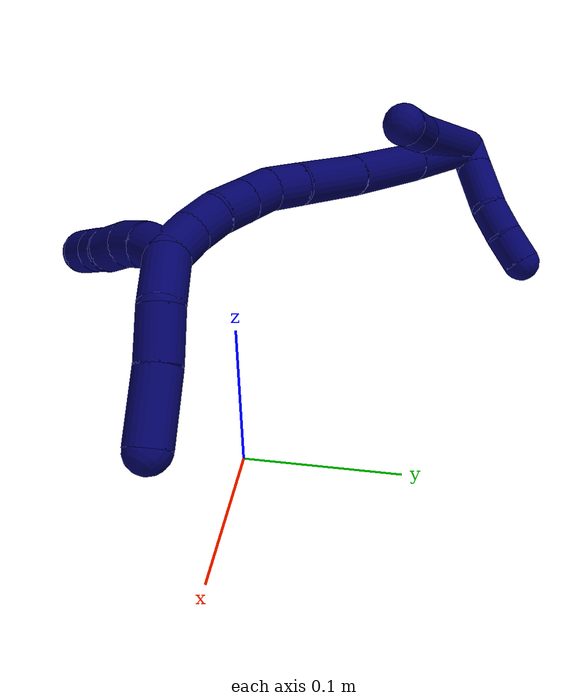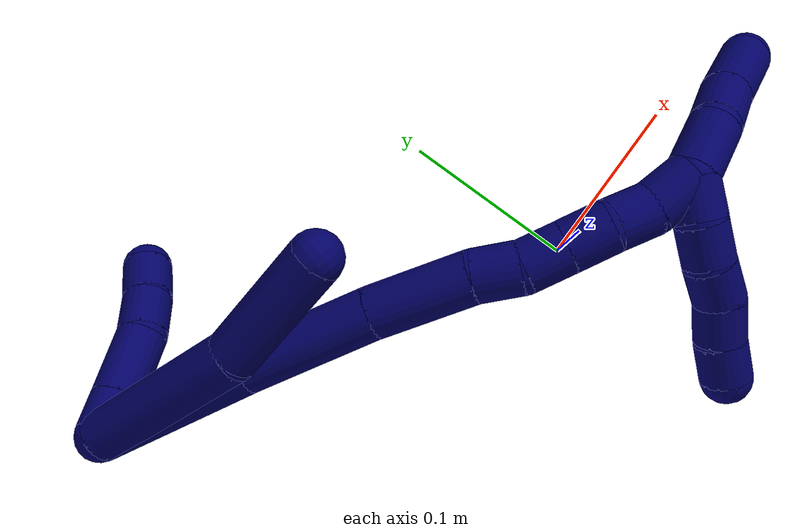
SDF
<sdf version="1.7">
 <world name="default">
  <model name="7">
   <static>0</static>
   <link name="7">
    <collision name="collision-cylinder-e_1_2_8">
     <pose>0.027327 0.006563 -0.033048 -2.94556 0.681447 -2.6005</pose>
     <geometry><cylinder><radius>0.0125</radius><length>0.086765</length></cylinder></geometry>
     <surface>
      <friction><ode><mu>1.16</mu><mu2>1.16</mu2><slip1>0</slip1><slip2>0</slip2></ode></friction>
      <contact><ode><kp>1e+06</kp><kd>1</kd><max_vel>0</max_vel><min_depth>0.001</min_depth></ode></contact>
     </surface>
    </collision>
    <visual name="visual-cylinder-e_1_2_8">
     <pose>0.027327 0.006563 -0.033048 -2.94556 0.681447 -2.6005</pose>
     <geometry><cylinder><radius>0.0125</radius><length>0.086765</length></cylinder></geometry>
     <material><ambient>0.003922 0 0.403922 1</ambient></material>
    </visual>
    <collision name="collision-cylinder-e_2_8_6">
     <pose>0.070886 0.025255 -0.090368 -2.67817 0.539087 -1.72789</pose>
     <geometry><cylinder><radius>0.0125</radius><length>0.063235</length></cylinder></geometry>
     <surface>
      <friction><ode><mu>1.16</mu><mu2>1.16</mu2><slip1>0</slip1><slip2>0</slip2></ode></friction>
      <contact><ode><kp>1e+06</kp><kd>1</kd><max_vel>0</max_vel><min_depth>0.001</min_depth></ode></contact>
     </surface>
    </collision>
    <visual name="visual-cylinder-e_2_8_6">
     <pose>0.070886 0.025255 -0.090368 -2.67817 0.539087 -1.72789</pose>
     <geometry><cylinder><radius>0.0125</radius><length>0.063235</length></cylinder></geometry>
     <material><ambient>0.003922 0 0.403922 1</ambient></material>
    </visual>
    <collision name="collision-cylinder-e_1_2_9">
     <pose>-0.005122 0.003405 -0.007931 -2.73604 -0.53554 1.85537</pose>
     <geometry><cylinder><radius>0.0125</radius><length>0.020073</length></cylinder></geometry>
     <surface>
      <friction><ode><mu>1.16</mu><mu2>1.16</mu2><slip1>0</slip1><slip2>0</slip2></ode></friction>
      <contact><ode><kp>1e+06</kp><kd>1</kd><max_vel>0</max_vel><min_depth>0.001</min_depth></ode></contact>
     </surface>
    </collision>
    <visual name="visual-cylinder-e_1_2_9">
     <pose>-0.005122 0.003405 -0.007931 -2.73604 -0.53554 1.85537</pose>
     <geometry><cylinder><radius>0.0125</radius><length>0.020073</length></cylinder></geometry>
     <material><ambient>0.003922 0 0.403922 1</ambient></material>
    </visual>
    <collision name="collision-cylinder-e_2_9_10">
     <pose>-0.018876 0.012993 -0.029709 -2.72165 -0.517509 1.78586</pose>
     <geometry><cylinder><radius>0.0125</radius><length>0.034899</length></cylinder></geometry>
     <surface>
      <friction><ode><mu>1.16</mu><mu2>1.16</mu2><slip1>0</slip1><slip2>0</slip2></ode></friction>
      <contact><ode><kp>1e+06</kp><kd>1</kd><max_vel>0</max_vel><min_depth>0.001</min_depth></ode></contact>
     </surface>
    </collision>
    <visual name="visual-cylinder-e_2_9_10">
     <pose>-0.018876 0.012993 -0.029709 -2.72165 -0.517509 1.78586</pose>
     <geometry><cylinder><radius>0.0125</radius><length>0.034899</length></cylinder></geometry>
     <material><ambient>0.003922 0 0.403922 1</ambient></material>
    </visual>
    <collision name="collision-cylinder-e_3_10_11">
     <pose>-0.035516 0.023411 -0.050234 -2.57636 -0.791677 1.92702</pose>
     <geometry><cylinder><radius>0.0125</radius><length>0.022508</length></cylinder></geometry>
     <surface>
      <friction><ode><mu>1.16</mu><mu2>1.16</mu2><slip1>0</slip1><slip2>0</slip2></ode></friction>
      <contact><ode><kp>1e+06</kp><kd>1</kd><max_vel>0</max_vel><min_depth>0.001</min_depth></ode></contact>
     </surface>
    </collision>
    <visual name="visual-cylinder-e_3_10_11">
     <pose>-0.035516 0.023411 -0.050234 -2.57636 -0.791677 1.92702</pose>
     <geometry><cylinder><radius>0.0125</radius><length>0.022508</length></cylinder></geometry>
     <material><ambient>0.003922 0 0.403922 1</ambient></material>
    </visual>
    <collision name="collision-cylinder-e_4_11_5">
     <pose>-0.052511 0.031893 -0.062202 -2.46523 -0.924263 1.91203</pose>
     <geometry><cylinder><radius>0.0125</radius><length>0.02252</length></cylinder></geometry>
     <surface>
      <friction><ode><mu>1.16</mu><mu2>1.16</mu2><slip1>0</slip1><slip2>0</slip2></ode></friction>
      <contact><ode><kp>1e+06</kp><kd>1</kd><max_vel>0</max_vel><min_depth>0.001</min_depth></ode></contact>
     </surface>
    </collision>
    <visual name="visual-cylinder-e_4_11_5">
     <pose>-0.052511 0.031893 -0.062202 -2.46523 -0.924263 1.91203</pose>
     <geometry><cylinder><radius>0.0125</radius><length>0.02252</length></cylinder></geometry>
     <material><ambient>0.003922 0 0.403922 1</ambient></material>
    </visual>
    <collision name="collision-cylinder-e_1_2_12">
     <pose>0.018346 -0.001208 -0.034586 3.10669 0.487464 3.00144</pose>
     <geometry><cylinder><radius>0.0125</radius><length>0.078339</length></cylinder></geometry>
     <surface>
      <friction><ode><mu>1.16</mu><mu2>1.16</mu2><slip1>0</slip1><slip2>0</slip2></ode></friction>
      <contact><ode><kp>1e+06</kp><kd>1</kd><max_vel>0</max_vel><min_depth>0.001</min_depth></ode></contact>
     </surface>
    </collision>
    <visual name="visual-cylinder-e_1_2_12">
     <pose>0.018346 -0.001208 -0.034586 3.10669 0.487464 3.00144</pose>
     <geometry><cylinder><radius>0.0125</radius><length>0.078339</length></cylinder></geometry>
     <material><ambient>0.003922 0 0.403922 1</ambient></material>
    </visual>
    <collision name="collision-cylinder-e_2_12_13">
     <pose>0.052844 -0.004117 -0.097596 3.0818 0.515974 2.91589</pose>
     <geometry><cylinder><radius>0.0125</radius><length>0.065473</length></cylinder></geometry>
     <surface>
      <friction><ode><mu>1.16</mu><mu2>1.16</mu2><slip1>0</slip1><slip2>0</slip2></ode></friction>
      <contact><ode><kp>1e+06</kp><kd>1</kd><max_vel>0</max_vel><min_depth>0.001</min_depth></ode></contact>
     </surface>
    </collision>
    <visual name="visual-cylinder-e_2_12_13">
     <pose>0.052844 -0.004117 -0.097596 3.0818 0.515974 2.91589</pose>
     <geometry><cylinder><radius>0.0125</radius><length>0.065473</length></cylinder></geometry>
     <material><ambient>0.003922 0 0.403922 1</ambient></material>
    </visual>
    <collision name="collision-cylinder-e_3_13_14">
     <pose>0.081785 -0.008281 -0.146566 3.02233 0.553569 2.72728</pose>
     <geometry><cylinder><radius>0.0125</radius><length>0.048654</length></cylinder></geometry>
     <surface>
      <friction><ode><mu>1.16</mu><mu2>1.16</mu2><slip1>0</slip1><slip2>0</slip2></ode></friction>
      <contact><ode><kp>1e+06</kp><kd>1</kd><max_vel>0</max_vel><min_depth>0.001</min_depth></ode></contact>
     </surface>
    </collision>
    <visual name="visual-cylinder-e_3_13_14">
     <pose>0.081785 -0.008281 -0.146566 3.02233 0.553569 2.72728</pose>
     <geometry><cylinder><radius>0.0125</radius><length>0.048654</length></cylinder></geometry>
     <material><ambient>0.003922 0 0.403922 1</ambient></material>
    </visual>
    <collision name="collision-cylinder-e_4_14_15">
     <pose>0.100264 -0.013755 -0.176051 2.81661 0.542759 2.07674</pose>
     <geometry><cylinder><radius>0.0125</radius><length>0.02203</length></cylinder></geometry>
     <surface>
      <friction><ode><mu>1.16</mu><mu2>1.16</mu2><slip1>0</slip1><slip2>0</slip2></ode></friction>
      <contact><ode><kp>1e+06</kp><kd>1</kd><max_vel>0</max_vel><min_depth>0.001</min_depth></ode></contact>
     </surface>
    </collision>
    <visual name="visual-cylinder-e_4_14_15">
     <pose>0.100264 -0.013755 -0.176051 2.81661 0.542759 2.07674</pose>
     <geometry><cylinder><radius>0.0125</radius><length>0.02203</length></cylinder></geometry>
     <material><ambient>0.003922 0 0.403922 1</ambient></material>
    </visual>
    <collision name="collision-cylinder-e_5_15_16">
     <pose>0.109561 -0.017698 -0.19466 3.04552 0.355622 2.61884</pose>
     <geometry><cylinder><radius>0.0125</radius><length>0.020728</length></cylinder></geometry>
     <surface>
      <friction><ode><mu>1.16</mu><mu2>1.16</mu2><slip1>0</slip1><slip2>0</slip2></ode></friction>
      <contact><ode><kp>1e+06</kp><kd>1</kd><max_vel>0</max_vel><min_depth>0.001</min_depth></ode></contact>
     </surface>
    </collision>
    <visual name="visual-cylinder-e_5_15_16">
     <pose>0.109561 -0.017698 -0.19466 3.04552 0.355622 2.61884</pose>
     <geometry><cylinder><radius>0.0125</radius><length>0.020728</length></cylinder></geometry>
     <material><ambient>0.003922 0 0.403922 1</ambient></material>
    </visual>
    <collision name="collision-cylinder-e_6_16_17">
     <pose>0.117049 -0.019505 -0.214444 3.05528 0.365006 2.68188</pose>
     <geometry><cylinder><radius>0.0125</radius><length>0.021734</length></cylinder></geometry>
     <surface>
      <friction><ode><mu>1.16</mu><mu2>1.16</mu2><slip1>0</slip1><slip2>0</slip2></ode></friction>
      <contact><ode><kp>1e+06</kp><kd>1</kd><max_vel>0</max_vel><min_depth>0.001</min_depth></ode></contact>
     </surface>
    </collision>
    <visual name="visual-cylinder-e_6_16_17">
     <pose>0.117049 -0.019505 -0.214444 3.05528 0.365006 2.68188</pose>
     <geometry><cylinder><radius>0.0125</radius><length>0.021734</length></cylinder></geometry>
     <material><ambient>0.003922 0 0.403922 1</ambient></material>
    </visual>
    <collision name="collision-cylinder-e_7_17_18">
     <pose>0.122554 -0.02248 -0.234213 2.92746 0.163072 1.30016</pose>
     <geometry><cylinder><radius>0.0125</radius><length>0.020028</length></cylinder></geometry>
     <surface>
      <friction><ode><mu>1.16</mu><mu2>1.16</mu2><slip1>0</slip1><slip2>0</slip2></ode></friction>
      <contact><ode><kp>1e+06</kp><kd>1</kd><max_vel>0</max_vel><min_depth>0.001</min_depth></ode></contact>
     </surface>
    </collision>
    <visual name="visual-cylinder-e_7_17_18">
     <pose>0.122554 -0.02248 -0.234213 2.92746 0.163072 1.30016</pose>
     <geometry><cylinder><radius>0.0125</radius><length>0.020028</length></cylinder></geometry>
     <material><ambient>0.003922 0 0.403922 1</ambient></material>
    </visual>
    <collision name="collision-cylinder-e_8_18_1">
     <pose>0.125948 -0.023712 -0.255206 -3.06525 0.154259 -2.22367</pose>
     <geometry><cylinder><radius>0.0125</radius><length>0.023015</length></cylinder></geometry>
     <surface>
      <friction><ode><mu>1.16</mu><mu2>1.16</mu2><slip1>0</slip1><slip2>0</slip2></ode></friction>
      <contact><ode><kp>1e+06</kp><kd>1</kd><max_vel>0</max_vel><min_depth>0.001</min_depth></ode></contact>
     </surface>
    </collision>
    <visual name="visual-cylinder-e_8_18_1">
     <pose>0.125948 -0.023712 -0.255206 -3.06525 0.154259 -2.22367</pose>
     <geometry><cylinder><radius>0.0125</radius><length>0.023015</length></cylinder></geometry>
     <material><ambient>0.003922 0 0.403922 1</ambient></material>
    </visual>
    <collision name="collision-cylinder-e_1_1_19">
     <pose>0.122437 -0.019502 -0.280563 -2.9075 -0.35105 1.97065</pose>
     <geometry><cylinder><radius>0.0125</radius><length>0.030698</length></cylinder></geometry>
     <surface>
      <friction><ode><mu>1.16</mu><mu2>1.16</mu2><slip1>0</slip1><slip2>0</slip2></ode></friction>
      <contact><ode><kp>1e+06</kp><kd>1</kd><max_vel>0</max_vel><min_depth>0.001</min_depth></ode></contact>
     </surface>
    </collision>
    <visual name="visual-cylinder-e_1_1_19">
     <pose>0.122437 -0.019502 -0.280563 -2.9075 -0.35105 1.97065</pose>
     <geometry><cylinder><radius>0.0125</radius><length>0.030698</length></cylinder></geometry>
     <material><ambient>0.003922 0 0.403922 1</ambient></material>
    </visual>
    <collision name="collision-cylinder-e_2_19_20">
     <pose>0.10839 -0.015978 -0.306374 -3.12627 -0.639424 3.0953</pose>
     <geometry><cylinder><radius>0.0125</radius><length>0.02939</length></cylinder></geometry>
     <surface>
      <friction><ode><mu>1.16</mu><mu2>1.16</mu2><slip1>0</slip1><slip2>0</slip2></ode></friction>
      <contact><ode><kp>1e+06</kp><kd>1</kd><max_vel>0</max_vel><min_depth>0.001</min_depth></ode></contact>
     </surface>
    </collision>
    <visual name="visual-cylinder-e_2_19_20">
     <pose>0.10839 -0.015978 -0.306374 -3.12627 -0.639424 3.0953</pose>
     <geometry><cylinder><radius>0.0125</radius><length>0.02939</length></cylinder></geometry>
     <material><ambient>0.003922 0 0.403922 1</ambient></material>
    </visual>
    <collision name="collision-cylinder-e_3_20_4">
     <pose>0.088773 -0.016402 -0.334903 3.10548 -0.574731 -3.01954</pose>
     <geometry><cylinder><radius>0.0125</radius><length>0.039912</length></cylinder></geometry>
     <surface>
      <friction><ode><mu>1.16</mu><mu2>1.16</mu2><slip1>0</slip1><slip2>0</slip2></ode></friction>
      <contact><ode><kp>1e+06</kp><kd>1</kd><max_vel>0</max_vel><min_depth>0.001</min_depth></ode></contact>
     </surface>
    </collision>
    <visual name="visual-cylinder-e_3_20_4">
     <pose>0.088773 -0.016402 -0.334903 3.10548 -0.574731 -3.01954</pose>
     <geometry><cylinder><radius>0.0125</radius><length>0.039912</length></cylinder></geometry>
     <material><ambient>0.003922 0 0.403922 1</ambient></material>
    </visual>
    <collision name="collision-cylinder-e_1_1_21">
     <pose>0.129671 -0.031804 -0.262555 1.15191 0.196763 0.128017</pose>
     <geometry><cylinder><radius>0.0125</radius><length>0.02</length></cylinder></geometry>
     <surface>
      <friction><ode><mu>1.16</mu><mu2>1.16</mu2><slip1>0</slip1><slip2>0</slip2></ode></friction>
      <contact><ode><kp>1e+06</kp><kd>1</kd><max_vel>0</max_vel><min_depth>0.001</min_depth></ode></contact>
     </surface>
    </collision>
    <visual name="visual-cylinder-e_1_1_21">
     <pose>0.129671 -0.031804 -0.262555 1.15191 0.196763 0.128017</pose>
     <geometry><cylinder><radius>0.0125</radius><length>0.02</length></cylinder></geometry>
     <material><ambient>0.003922 0 0.403922 1</ambient></material>
    </visual>
    <collision name="collision-cylinder-e_2_21_22">
     <pose>0.131741 -0.05036 -0.255756 1.286 0.011526 0.008635</pose>
     <geometry><cylinder><radius>0.0125</radius><length>0.02</length></cylinder></geometry>
     <surface>
      <friction><ode><mu>1.16</mu><mu2>1.16</mu2><slip1>0</slip1><slip2>0</slip2></ode></friction>
      <contact><ode><kp>1e+06</kp><kd>1</kd><max_vel>0</max_vel><min_depth>0.001</min_depth></ode></contact>
     </surface>
    </collision>
    <visual name="visual-cylinder-e_2_21_22">
     <pose>0.131741 -0.05036 -0.255756 1.286 0.011526 0.008635</pose>
     <geometry><cylinder><radius>0.0125</radius><length>0.02</length></cylinder></geometry>
     <material><ambient>0.003922 0 0.403922 1</ambient></material>
    </visual>
    <collision name="collision-cylinder-e_3_22_23">
     <pose>0.130792 -0.069821 -0.251698 1.44493 -0.106659 -0.094032</pose>
     <geometry><cylinder><radius>0.0125</radius><length>0.02</length></cylinder></geometry>
     <surface>
      <friction><ode><mu>1.16</mu><mu2>1.16</mu2><slip1>0</slip1><slip2>0</slip2></ode></friction>
      <contact><ode><kp>1e+06</kp><kd>1</kd><max_vel>0</max_vel><min_depth>0.001</min_depth></ode></contact>
     </surface>
    </collision>
    <visual name="visual-cylinder-e_3_22_23">
     <pose>0.130792 -0.069821 -0.251698 1.44493 -0.106659 -0.094032</pose>
     <geometry><cylinder><radius>0.0125</radius><length>0.02</length></cylinder></geometry>
     <material><ambient>0.003922 0 0.403922 1</ambient></material>
    </visual>
    <collision name="collision-cylinder-e_4_23_24">
     <pose>0.128307 -0.088848 -0.246705 1.18278 -0.142437 -0.095745</pose>
     <geometry><cylinder><radius>0.0125</radius><length>0.02</length></cylinder></geometry>
     <surface>
      <friction><ode><mu>1.16</mu><mu2>1.16</mu2><slip1>0</slip1><slip2>0</slip2></ode></friction>
      <contact><ode><kp>1e+06</kp><kd>1</kd><max_vel>0</max_vel><min_depth>0.001</min_depth></ode></contact>
     </surface>
    </collision>
    <visual name="visual-cylinder-e_4_23_24">
     <pose>0.128307 -0.088848 -0.246705 1.18278 -0.142437 -0.095745</pose>
     <geometry><cylinder><radius>0.0125</radius><length>0.02</length></cylinder></geometry>
     <material><ambient>0.003922 0 0.403922 1</ambient></material>
    </visual>
    <collision name="collision-cylinder-e_5_24_3">
     <pose>0.126043 -0.107635 -0.240377 1.3086 -0.084556 -0.064871</pose>
     <geometry><cylinder><radius>0.0125</radius><length>0.02</length></cylinder></geometry>
     <surface>
      <friction><ode><mu>1.16</mu><mu2>1.16</mu2><slip1>0</slip1><slip2>0</slip2></ode></friction>
      <contact><ode><kp>1e+06</kp><kd>1</kd><max_vel>0</max_vel><min_depth>0.001</min_depth></ode></contact>
     </surface>
    </collision>
    <visual name="visual-cylinder-e_5_24_3">
     <pose>0.126043 -0.107635 -0.240377 1.3086 -0.084556 -0.064871</pose>
     <geometry><cylinder><radius>0.0125</radius><length>0.02</length></cylinder></geometry>
     <material><ambient>0.003922 0 0.403922 1</ambient></material>
    </visual>
    <collision name="collision-sphere-3">
     <pose>0.125199 -0.117259 -0.237794 0 -0 0</pose>
     <geometry><sphere><radius>0.0125</radius></sphere></geometry>
     <surface>
      <friction><ode><mu>1.16</mu><mu2>1.16</mu2><slip1>0</slip1><slip2>0</slip2></ode></friction>
      <contact><ode><kp>1e+06</kp><kd>1</kd><max_vel>0</max_vel><min_depth>0.001</min_depth></ode></contact>
     </surface>
    </collision>
    <visual name="visual-sphere-3">
     <pose>0.125199 -0.117259 -0.237794 0 -0 0</pose>
     <geometry><sphere><radius>0.0125</radius></sphere></geometry>
     <material><ambient>0.003922 0 0.403922 1</ambient></material>
    </visual>
    <collision name="collision-sphere-24">
     <pose>0.126888 -0.098011 -0.24296 0 -0 0</pose>
     <geometry><sphere><radius>0.0125</radius></sphere></geometry>
     <surface>
      <friction><ode><mu>1.16</mu><mu2>1.16</mu2><slip1>0</slip1><slip2>0</slip2></ode></friction>
      <contact><ode><kp>1e+06</kp><kd>1</kd><max_vel>0</max_vel><min_depth>0.001</min_depth></ode></contact>
     </surface>
    </collision>
    <visual name="visual-sphere-24">
     <pose>0.126888 -0.098011 -0.24296 0 -0 0</pose>
     <geometry><sphere><radius>0.0125</radius></sphere></geometry>
     <material><ambient>0.003922 0 0.403922 1</ambient></material>
    </visual>
    <collision name="collision-sphere-23">
     <pose>0.129727 -0.079686 -0.25045 0 -0 0</pose>
     <geometry><sphere><radius>0.0125</radius></sphere></geometry>
     <surface>
      <friction><ode><mu>1.16</mu><mu2>1.16</mu2><slip1>0</slip1><slip2>0</slip2></ode></friction>
      <contact><ode><kp>1e+06</kp><kd>1</kd><max_vel>0</max_vel><min_depth>0.001</min_depth></ode></contact>
     </surface>
    </collision>
    <visual name="visual-sphere-23">
     <pose>0.129727 -0.079686 -0.25045 0 -0 0</pose>
     <geometry><sphere><radius>0.0125</radius></sphere></geometry>
     <material><ambient>0.003922 0 0.403922 1</ambient></material>
    </visual>
    <collision name="collision-sphere-22">
     <pose>0.131856 -0.059957 -0.252947 0 -0 0</pose>
     <geometry><sphere><radius>0.0125</radius></sphere></geometry>
     <surface>
      <friction><ode><mu>1.16</mu><mu2>1.16</mu2><slip1>0</slip1><slip2>0</slip2></ode></friction>
      <contact><ode><kp>1e+06</kp><kd>1</kd><max_vel>0</max_vel><min_depth>0.001</min_depth></ode></contact>
     </surface>
    </collision>
    <visual name="visual-sphere-22">
     <pose>0.131856 -0.059957 -0.252947 0 -0 0</pose>
     <geometry><sphere><radius>0.0125</radius></sphere></geometry>
     <material><ambient>0.003922 0 0.403922 1</ambient></material>
    </visual>
    <collision name="collision-sphere-21">
     <pose>0.131626 -0.040763 -0.258566 0 -0 0</pose>
     <geometry><sphere><radius>0.0125</radius></sphere></geometry>
     <surface>
      <friction><ode><mu>1.16</mu><mu2>1.16</mu2><slip1>0</slip1><slip2>0</slip2></ode></friction>
      <contact><ode><kp>1e+06</kp><kd>1</kd><max_vel>0</max_vel><min_depth>0.001</min_depth></ode></contact>
     </surface>
    </collision>
    <visual name="visual-sphere-21">
     <pose>0.131626 -0.040763 -0.258566 0 -0 0</pose>
     <geometry><sphere><radius>0.0125</radius></sphere></geometry>
     <material><ambient>0.003922 0 0.403922 1</ambient></material>
    </visual>
    <collision name="collision-sphere-4">
     <pose>0.077925 -0.017007 -0.351642 0 -0 0</pose>
     <geometry><sphere><radius>0.0125</radius></sphere></geometry>
     <surface>
      <friction><ode><mu>1.16</mu><mu2>1.16</mu2><slip1>0</slip1><slip2>0</slip2></ode></friction>
      <contact><ode><kp>1e+06</kp><kd>1</kd><max_vel>0</max_vel><min_depth>0.001</min_depth></ode></contact>
     </surface>
    </collision>
    <visual name="visual-sphere-4">
     <pose>0.077925 -0.017007 -0.351642 0 -0 0</pose>
     <geometry><sphere><radius>0.0125</radius></sphere></geometry>
     <material><ambient>0.003922 0 0.403922 1</ambient></material>
    </visual>
    <collision name="collision-sphere-20">
     <pose>0.099621 -0.015797 -0.318164 0 -0 0</pose>
     <geometry><sphere><radius>0.0125</radius></sphere></geometry>
     <surface>
      <friction><ode><mu>1.16</mu><mu2>1.16</mu2><slip1>0</slip1><slip2>0</slip2></ode></friction>
      <contact><ode><kp>1e+06</kp><kd>1</kd><max_vel>0</max_vel><min_depth>0.001</min_depth></ode></contact>
     </surface>
    </collision>
    <visual name="visual-sphere-20">
     <pose>0.099621 -0.015797 -0.318164 0 -0 0</pose>
     <geometry><sphere><radius>0.0125</radius></sphere></geometry>
     <material><ambient>0.003922 0 0.403922 1</ambient></material>
    </visual>
    <collision name="collision-sphere-11">
     <pose>-0.043524 0.027647 -0.056912 0 -0 0</pose>
     <geometry><sphere><radius>0.0125</radius></sphere></geometry>
     <surface>
      <friction><ode><mu>1.16</mu><mu2>1.16</mu2><slip1>0</slip1><slip2>0</slip2></ode></friction>
      <contact><ode><kp>1e+06</kp><kd>1</kd><max_vel>0</max_vel><min_depth>0.001</min_depth></ode></contact>
     </surface>
    </collision>
    <visual name="visual-sphere-11">
     <pose>-0.043524 0.027647 -0.056912 0 -0 0</pose>
     <geometry><sphere><radius>0.0125</radius></sphere></geometry>
     <material><ambient>0.003922 0 0.403922 1</ambient></material>
    </visual>
    <collision name="collision-sphere-10">
     <pose>-0.027508 0.019176 -0.043556 0 -0 0</pose>
     <geometry><sphere><radius>0.0125</radius></sphere></geometry>
     <surface>
      <friction><ode><mu>1.16</mu><mu2>1.16</mu2><slip1>0</slip1><slip2>0</slip2></ode></friction>
      <contact><ode><kp>1e+06</kp><kd>1</kd><max_vel>0</max_vel><min_depth>0.001</min_depth></ode></contact>
     </surface>
    </collision>
    <visual name="visual-sphere-10">
     <pose>-0.027508 0.019176 -0.043556 0 -0 0</pose>
     <geometry><sphere><radius>0.0125</radius></sphere></geometry>
     <material><ambient>0.003922 0 0.403922 1</ambient></material>
    </visual>
    <collision name="collision-sphere-6">
     <pose>0.087117 0.037384 -0.11464 0 -0 0</pose>
     <geometry><sphere><radius>0.0125</radius></sphere></geometry>
     <surface>
      <friction><ode><mu>1.16</mu><mu2>1.16</mu2><slip1>0</slip1><slip2>0</slip2></ode></friction>
      <contact><ode><kp>1e+06</kp><kd>1</kd><max_vel>0</max_vel><min_depth>0.001</min_depth></ode></contact>
     </surface>
    </collision>
    <visual name="visual-sphere-6">
     <pose>0.087117 0.037384 -0.11464 0 -0 0</pose>
     <geometry><sphere><radius>0.0125</radius></sphere></geometry>
     <material><ambient>0.003922 0 0.403922 1</ambient></material>
    </visual>
    <collision name="collision-sphere-9">
     <pose>-0.010243 0.00681 -0.015862 0 -0 0</pose>
     <geometry><sphere><radius>0.0125</radius></sphere></geometry>
     <surface>
      <friction><ode><mu>1.16</mu><mu2>1.16</mu2><slip1>0</slip1><slip2>0</slip2></ode></friction>
      <contact><ode><kp>1e+06</kp><kd>1</kd><max_vel>0</max_vel><min_depth>0.001</min_depth></ode></contact>
     </surface>
    </collision>
    <visual name="visual-sphere-9">
     <pose>-0.010243 0.00681 -0.015862 0 -0 0</pose>
     <geometry><sphere><radius>0.0125</radius></sphere></geometry>
     <material><ambient>0.003922 0 0.403922 1</ambient></material>
    </visual>
    <collision name="collision-sphere-2">
     <geometry><sphere><radius>0.0125</radius></sphere></geometry>
     <surface>
      <friction><ode><mu>1.16</mu><mu2>1.16</mu2><slip1>0</slip1><slip2>0</slip2></ode></friction>
      <contact><ode><kp>1e+06</kp><kd>1</kd><max_vel>0</max_vel><min_depth>0.001</min_depth></ode></contact>
     </surface>
    </collision>
    <visual name="visual-sphere-2">
     <geometry><sphere><radius>0.0125</radius></sphere></geometry>
     <material><ambient>0.003922 0 0.403922 1</ambient></material>
    </visual>
    <collision name="collision-sphere-19">
     <pose>0.117159 -0.016159 -0.294583 0 -0 0</pose>
     <geometry><sphere><radius>0.0125</radius></sphere></geometry>
     <surface>
      <friction><ode><mu>1.16</mu><mu2>1.16</mu2><slip1>0</slip1><slip2>0</slip2></ode></friction>
      <contact><ode><kp>1e+06</kp><kd>1</kd><max_vel>0</max_vel><min_depth>0.001</min_depth></ode></contact>
     </surface>
    </collision>
    <visual name="visual-sphere-19">
     <pose>0.117159 -0.016159 -0.294583 0 -0 0</pose>
     <geometry><sphere><radius>0.0125</radius></sphere></geometry>
     <material><ambient>0.003922 0 0.403922 1</ambient></material>
    </visual>
    <collision name="collision-sphere-8">
     <pose>0.054655 0.013126 -0.066096 0 -0 0</pose>
     <geometry><sphere><radius>0.0125</radius></sphere></geometry>
     <surface>
      <friction><ode><mu>1.16</mu><mu2>1.16</mu2><slip1>0</slip1><slip2>0</slip2></ode></friction>
      <contact><ode><kp>1e+06</kp><kd>1</kd><max_vel>0</max_vel><min_depth>0.001</min_depth></ode></contact>
     </surface>
    </collision>
    <visual name="visual-sphere-8">
     <pose>0.054655 0.013126 -0.066096 0 -0 0</pose>
     <geometry><sphere><radius>0.0125</radius></sphere></geometry>
     <material><ambient>0.003922 0 0.403922 1</ambient></material>
    </visual>
    <collision name="collision-sphere-5">
     <pose>-0.061499 0.036139 -0.067492 0 -0 0</pose>
     <geometry><sphere><radius>0.0125</radius></sphere></geometry>
     <surface>
      <friction><ode><mu>1.16</mu><mu2>1.16</mu2><slip1>0</slip1><slip2>0</slip2></ode></friction>
      <contact><ode><kp>1e+06</kp><kd>1</kd><max_vel>0</max_vel><min_depth>0.001</min_depth></ode></contact>
     </surface>
    </collision>
    <visual name="visual-sphere-5">
     <pose>-0.061499 0.036139 -0.067492 0 -0 0</pose>
     <geometry><sphere><radius>0.0125</radius></sphere></geometry>
     <material><ambient>0.003922 0 0.403922 1</ambient></material>
    </visual>
    <collision name="collision-sphere-12">
     <pose>0.036693 -0.002416 -0.069172 0 -0 0</pose>
     <geometry><sphere><radius>0.0125</radius></sphere></geometry>
     <surface>
      <friction><ode><mu>1.16</mu><mu2>1.16</mu2><slip1>0</slip1><slip2>0</slip2></ode></friction>
      <contact><ode><kp>1e+06</kp><kd>1</kd><max_vel>0</max_vel><min_depth>0.001</min_depth></ode></contact>
     </surface>
    </collision>
    <visual name="visual-sphere-12">
     <pose>0.036693 -0.002416 -0.069172 0 -0 0</pose>
     <geometry><sphere><radius>0.0125</radius></sphere></geometry>
     <material><ambient>0.003922 0 0.403922 1</ambient></material>
    </visual>
    <collision name="collision-sphere-13">
     <pose>0.068996 -0.005819 -0.126019 0 -0 0</pose>
     <geometry><sphere><radius>0.0125</radius></sphere></geometry>
     <surface>
      <friction><ode><mu>1.16</mu><mu2>1.16</mu2><slip1>0</slip1><slip2>0</slip2></ode></friction>
      <contact><ode><kp>1e+06</kp><kd>1</kd><max_vel>0</max_vel><min_depth>0.001</min_depth></ode></contact>
     </surface>
    </collision>
    <visual name="visual-sphere-13">
     <pose>0.068996 -0.005819 -0.126019 0 -0 0</pose>
     <geometry><sphere><radius>0.0125</radius></sphere></geometry>
     <material><ambient>0.003922 0 0.403922 1</ambient></material>
    </visual>
    <collision name="collision-sphere-14">
     <pose>0.094575 -0.010743 -0.167113 0 -0 0</pose>
     <geometry><sphere><radius>0.0125</radius></sphere></geometry>
     <surface>
      <friction><ode><mu>1.16</mu><mu2>1.16</mu2><slip1>0</slip1><slip2>0</slip2></ode></friction>
      <contact><ode><kp>1e+06</kp><kd>1</kd><max_vel>0</max_vel><min_depth>0.001</min_depth></ode></contact>
     </surface>
    </collision>
    <visual name="visual-sphere-14">
     <pose>0.094575 -0.010743 -0.167113 0 -0 0</pose>
     <geometry><sphere><radius>0.0125</radius></sphere></geometry>
     <material><ambient>0.003922 0 0.403922 1</ambient></material>
    </visual>
    <collision name="collision-sphere-15">
     <pose>0.105953 -0.016766 -0.184989 0 -0 0</pose>
     <geometry><sphere><radius>0.0125</radius></sphere></geometry>
     <surface>
      <friction><ode><mu>1.16</mu><mu2>1.16</mu2><slip1>0</slip1><slip2>0</slip2></ode></friction>
      <contact><ode><kp>1e+06</kp><kd>1</kd><max_vel>0</max_vel><min_depth>0.001</min_depth></ode></contact>
     </surface>
    </collision>
    <visual name="visual-sphere-15">
     <pose>0.105953 -0.016766 -0.184989 0 -0 0</pose>
     <geometry><sphere><radius>0.0125</radius></sphere></geometry>
     <material><ambient>0.003922 0 0.403922 1</ambient></material>
    </visual>
    <collision name="collision-sphere-16">
     <pose>0.11317 -0.01863 -0.204331 0 -0 0</pose>
     <geometry><sphere><radius>0.0125</radius></sphere></geometry>
     <surface>
      <friction><ode><mu>1.16</mu><mu2>1.16</mu2><slip1>0</slip1><slip2>0</slip2></ode></friction>
      <contact><ode><kp>1e+06</kp><kd>1</kd><max_vel>0</max_vel><min_depth>0.001</min_depth></ode></contact>
     </surface>
    </collision>
    <visual name="visual-sphere-16">
     <pose>0.11317 -0.01863 -0.204331 0 -0 0</pose>
     <geometry><sphere><radius>0.0125</radius></sphere></geometry>
     <material><ambient>0.003922 0 0.403922 1</ambient></material>
    </visual>
    <collision name="collision-sphere-17">
     <pose>0.120928 -0.02038 -0.224557 0 -0 0</pose>
     <geometry><sphere><radius>0.0125</radius></sphere></geometry>
     <surface>
      <friction><ode><mu>1.16</mu><mu2>1.16</mu2><slip1>0</slip1><slip2>0</slip2></ode></friction>
      <contact><ode><kp>1e+06</kp><kd>1</kd><max_vel>0</max_vel><min_depth>0.001</min_depth></ode></contact>
     </surface>
    </collision>
    <visual name="visual-sphere-17">
     <pose>0.120928 -0.02038 -0.224557 0 -0 0</pose>
     <geometry><sphere><radius>0.0125</radius></sphere></geometry>
     <material><ambient>0.003922 0 0.403922 1</ambient></material>
    </visual>
    <collision name="collision-sphere-18">
     <pose>0.12418 -0.02458 -0.243868 0 -0 0</pose>
     <geometry><sphere><radius>0.0125</radius></sphere></geometry>
     <surface>
      <friction><ode><mu>1.16</mu><mu2>1.16</mu2><slip1>0</slip1><slip2>0</slip2></ode></friction>
      <contact><ode><kp>1e+06</kp><kd>1</kd><max_vel>0</max_vel><min_depth>0.001</min_depth></ode></contact>
     </surface>
    </collision>
    <visual name="visual-sphere-18">
     <pose>0.12418 -0.02458 -0.243868 0 -0 0</pose>
     <geometry><sphere><radius>0.0125</radius></sphere></geometry>
     <material><ambient>0.003922 0 0.403922 1</ambient></material>
    </visual>
    <collision name="collision-sphere-1">
     <pose>0.127716 -0.022845 -0.266544 0 -0 0</pose>
     <geometry><sphere><radius>0.0125</radius></sphere></geometry>
     <surface>
      <friction><ode><mu>1.16</mu><mu2>1.16</mu2><slip1>0</slip1><slip2>0</slip2></ode></friction>
      <contact><ode><kp>1e+06</kp><kd>1</kd><max_vel>0</max_vel><min_depth>0.001</min_depth></ode></contact>
     </surface>
    </collision>
    <visual name="visual-sphere-1">
     <pose>0.127716 -0.022845 -0.266544 0 -0 0</pose>
     <geometry><sphere><radius>0.0125</radius></sphere></geometry>
     <material><ambient>0.003922 0 0.403922 1</ambient></material>
    </visual>
    <inertial>
     <pose>0.065042 -0.010154 -0.143738 0 -0 0</pose>
     <mass>0.75</mass>
     <inertia>
      <ixx>-0.000127</ixx>
      <ixy>0</ixy>
      <ixz>0</ixz>
      <iyy>0.000144</iyy>
      <iyz>0</iyz>
      <izz>-0.000127</izz>
     </inertia>
    </inertial>
   </link>
   <pose>-0.215458 0.125509 0.125049 1.13689 -1.05636 -1.44775</pose>
  </model>
 </world>
</sdf>
